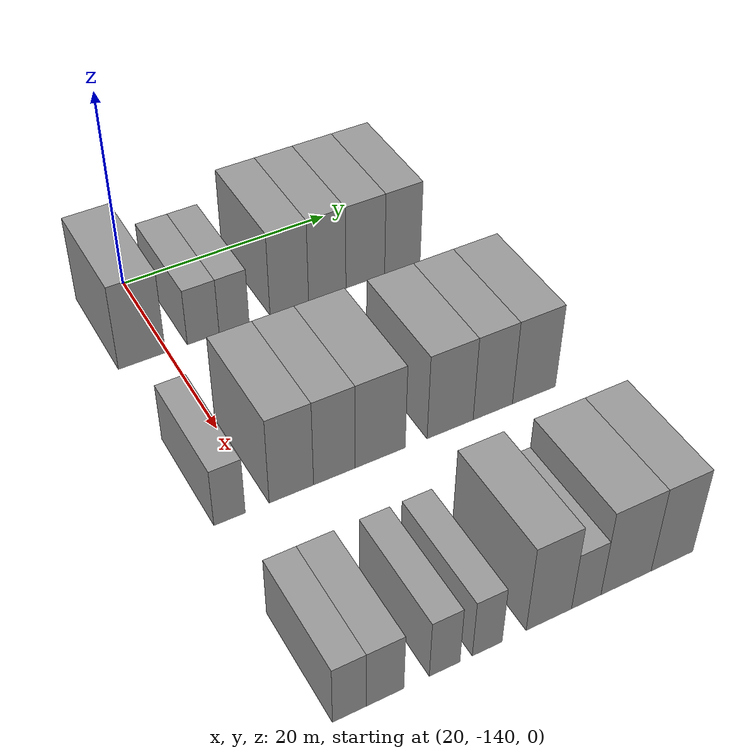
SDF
<sdf version="1.6">
 <world name="default">
  <model name="building_25">
   <static>1</static>
   <pose>25.0000 -142.2803 0 0.000000 0.000000 0.000000</pose>
   <link name="link">
    <pose>0 0 4.50 0 0 0</pose>
    <collision name="collision"><geometry><box><size>10.0000 4.2353 9.0000</size></box></geometry></collision>
    <visual name="visual">
     <cast_shadows>0</cast_shadows>
     <geometry><box><size>10.0000 4.2353 9.0000</size></box></geometry>
     <material>
      <script>
       <uri>model://grey_wall/materials/scripts</uri>
       <uri>model://grey_wall/materials/textures</uri>
       <name>vrc/grey_wall</name>
      </script>
     </material>
    </visual>
   </link>
  </model>
  <model name="building_26">
   <static>1</static>
   <pose>25.0000 -136.6865 0 0.000000 0.000000 0.000000</pose>
   <link name="link">
    <pose>0 0 3.00 0 0 0</pose>
    <collision name="collision"><geometry><box><size>10.0000 2.9522 6.0000</size></box></geometry></collision>
    <visual name="visual">
     <cast_shadows>0</cast_shadows>
     <geometry><box><size>10.0000 2.9522 6.0000</size></box></geometry>
     <material>
      <script>
       <uri>model://grey_wall/materials/scripts</uri>
       <uri>model://grey_wall/materials/textures</uri>
       <name>vrc/grey_wall</name>
      </script>
     </material>
    </visual>
   </link>
  </model>
  <model name="building_27">
   <static>1</static>
   <pose>25.0000 -133.7986 0 0.000000 0.000000 0.000000</pose>
   <link name="link">
    <pose>0 0 3.00 0 0 0</pose>
    <collision name="collision"><geometry><box><size>10.0000 2.8236 6.0000</size></box></geometry></collision>
    <visual name="visual">
     <cast_shadows>0</cast_shadows>
     <geometry><box><size>10.0000 2.8236 6.0000</size></box></geometry>
     <material>
      <script>
       <uri>model://grey_wall/materials/scripts</uri>
       <uri>model://grey_wall/materials/textures</uri>
       <name>vrc/grey_wall</name>
      </script>
     </material>
    </visual>
   </link>
  </model>
  <model name="building_28">
   <static>1</static>
   <pose>25.0000 -128.5092 0 0.000000 0.000000 0.000000</pose>
   <link name="link">
    <pose>0 0 4.50 0 0 0</pose>
    <collision name="collision"><geometry><box><size>10.0000 3.7552 9.0000</size></box></geometry></collision>
    <visual name="visual">
     <cast_shadows>0</cast_shadows>
     <geometry><box><size>10.0000 3.7552 9.0000</size></box></geometry>
     <material>
      <script>
       <uri>model://grey_wall/materials/scripts</uri>
       <uri>model://grey_wall/materials/textures</uri>
       <name>vrc/grey_wall</name>
      </script>
     </material>
    </visual>
   </link>
  </model>
  <model name="building_29">
   <static>1</static>
   <pose>25.0000 -124.7815 0 0.000000 0.000000 0.000000</pose>
   <link name="link">
    <pose>0 0 4.50 0 0 0</pose>
    <collision name="collision"><geometry><box><size>10.0000 3.7002 9.0000</size></box></geometry></collision>
    <visual name="visual">
     <cast_shadows>0</cast_shadows>
     <geometry><box><size>10.0000 3.7002 9.0000</size></box></geometry>
     <material>
      <script>
       <uri>model://grey_wall/materials/scripts</uri>
       <uri>model://grey_wall/materials/textures</uri>
       <name>vrc/grey_wall</name>
      </script>
     </material>
    </visual>
   </link>
  </model>
  <model name="building_30">
   <static>1</static>
   <pose>25.0000 -120.9735 0 0.000000 0.000000 0.000000</pose>
   <link name="link">
    <pose>0 0 4.50 0 0 0</pose>
    <collision name="collision"><geometry><box><size>10.0000 3.9158 9.0000</size></box></geometry></collision>
    <visual name="visual">
     <cast_shadows>0</cast_shadows>
     <geometry><box><size>10.0000 3.9158 9.0000</size></box></geometry>
     <material>
      <script>
       <uri>model://grey_wall/materials/scripts</uri>
       <uri>model://grey_wall/materials/textures</uri>
       <name>vrc/grey_wall</name>
      </script>
     </material>
    </visual>
   </link>
  </model>
  <model name="building_31">
   <static>1</static>
   <pose>25.0000 -117.1843 0 0.000000 0.000000 0.000000</pose>
   <link name="link">
    <pose>0 0 4.50 0 0 0</pose>
    <collision name="collision"><geometry><box><size>10.0000 3.6627 9.0000</size></box></geometry></collision>
    <visual name="visual">
     <cast_shadows>0</cast_shadows>
     <geometry><box><size>10.0000 3.6627 9.0000</size></box></geometry>
     <material>
      <script>
       <uri>model://grey_wall/materials/scripts</uri>
       <uri>model://grey_wall/materials/textures</uri>
       <name>vrc/grey_wall</name>
      </script>
     </material>
    </visual>
   </link>
  </model>
  <model name="building_135">
   <static>1</static>
   <pose>44.0000 -142.9965 0 0.000000 0.000000 0.000000</pose>
   <link name="link">
    <pose>0 0 3.00 0 0 0</pose>
    <collision name="collision"><geometry><box><size>10.0000 2.5897 6.0000</size></box></geometry></collision>
    <visual name="visual">
     <cast_shadows>0</cast_shadows>
     <geometry><box><size>10.0000 2.5897 6.0000</size></box></geometry>
     <material>
      <script>
       <uri>model://grey_wall/materials/scripts</uri>
       <uri>model://grey_wall/materials/textures</uri>
       <name>vrc/grey_wall</name>
      </script>
     </material>
    </visual>
   </link>
  </model>
  <model name="building_136">
   <static>1</static>
   <pose>44.0000 -137.8077 0 0.000000 0.000000 0.000000</pose>
   <link name="link">
    <pose>0 0 4.50 0 0 0</pose>
    <collision name="collision"><geometry><box><size>10.0000 3.7879 9.0000</size></box></geometry></collision>
    <visual name="visual">
     <cast_shadows>0</cast_shadows>
     <geometry><box><size>10.0000 3.7879 9.0000</size></box></geometry>
     <material>
      <script>
       <uri>model://grey_wall/materials/scripts</uri>
       <uri>model://grey_wall/materials/textures</uri>
       <name>vrc/grey_wall</name>
      </script>
     </material>
    </visual>
   </link>
  </model>
  <model name="building_137">
   <static>1</static>
   <pose>44.0000 -134.0973 0 0.000000 0.000000 0.000000</pose>
   <link name="link">
    <pose>0 0 4.50 0 0 0</pose>
    <collision name="collision"><geometry><box><size>10.0000 3.6330 9.0000</size></box></geometry></collision>
    <visual name="visual">
     <cast_shadows>0</cast_shadows>
     <geometry><box><size>10.0000 3.6330 9.0000</size></box></geometry>
     <material>
      <script>
       <uri>model://grey_wall/materials/scripts</uri>
       <uri>model://grey_wall/materials/textures</uri>
       <name>vrc/grey_wall</name>
      </script>
     </material>
    </visual>
   </link>
  </model>
  <model name="building_138">
   <static>1</static>
   <pose>44.0000 -130.0490 0 0.000000 0.000000 0.000000</pose>
   <link name="link">
    <pose>0 0 4.50 0 0 0</pose>
    <collision name="collision"><geometry><box><size>10.0000 4.4636 9.0000</size></box></geometry></collision>
    <visual name="visual">
     <cast_shadows>0</cast_shadows>
     <geometry><box><size>10.0000 4.4636 9.0000</size></box></geometry>
     <material>
      <script>
       <uri>model://grey_wall/materials/scripts</uri>
       <uri>model://grey_wall/materials/textures</uri>
       <name>vrc/grey_wall</name>
      </script>
     </material>
    </visual>
   </link>
  </model>
  <model name="building_139">
   <static>1</static>
   <pose>44.0000 -123.6754 0 0.000000 0.000000 0.000000</pose>
   <link name="link">
    <pose>0 0 4.50 0 0 0</pose>
    <collision name="collision"><geometry><box><size>10.0000 4.2837 9.0000</size></box></geometry></collision>
    <visual name="visual">
     <cast_shadows>0</cast_shadows>
     <geometry><box><size>10.0000 4.2837 9.0000</size></box></geometry>
     <material>
      <script>
       <uri>model://grey_wall/materials/scripts</uri>
       <uri>model://grey_wall/materials/textures</uri>
       <name>vrc/grey_wall</name>
      </script>
     </material>
    </visual>
   </link>
  </model>
  <model name="building_140">
   <static>1</static>
   <pose>44.0000 -119.6615 0 0.000000 0.000000 0.000000</pose>
   <link name="link">
    <pose>0 0 4.50 0 0 0</pose>
    <collision name="collision"><geometry><box><size>10.0000 3.7443 9.0000</size></box></geometry></collision>
    <visual name="visual">
     <cast_shadows>0</cast_shadows>
     <geometry><box><size>10.0000 3.7443 9.0000</size></box></geometry>
     <material>
      <script>
       <uri>model://grey_wall/materials/scripts</uri>
       <uri>model://grey_wall/materials/textures</uri>
       <name>vrc/grey_wall</name>
      </script>
     </material>
    </visual>
   </link>
  </model>
  <model name="building_141">
   <static>1</static>
   <pose>44.0000 -115.6924 0 0.000000 0.000000 0.000000</pose>
   <link name="link">
    <pose>0 0 4.50 0 0 0</pose>
    <collision name="collision"><geometry><box><size>10.0000 4.1938 9.0000</size></box></geometry></collision>
    <visual name="visual">
     <cast_shadows>0</cast_shadows>
     <geometry><box><size>10.0000 4.1938 9.0000</size></box></geometry>
     <material>
      <script>
       <uri>model://grey_wall/materials/scripts</uri>
       <uri>model://grey_wall/materials/textures</uri>
       <name>vrc/grey_wall</name>
      </script>
     </material>
    </visual>
   </link>
  </model>
  <model name="building_256">
   <static>1</static>
   <pose>63.0000 -143.0145 0 0.000000 0.000000 0.000000</pose>
   <link name="link">
    <pose>0 0 3.00 0 0 0</pose>
    <collision name="collision"><geometry><box><size>10.0000 2.5443 6.0000</size></box></geometry></collision>
    <visual name="visual">
     <cast_shadows>0</cast_shadows>
     <geometry><box><size>10.0000 2.5443 6.0000</size></box></geometry>
     <material>
      <script>
       <uri>model://grey_wall/materials/scripts</uri>
       <uri>model://grey_wall/materials/textures</uri>
       <name>vrc/grey_wall</name>
      </script>
     </material>
    </visual>
   </link>
  </model>
  <model name="building_257">
   <static>1</static>
   <pose>63.0000 -140.2894 0 0.000000 0.000000 0.000000</pose>
   <link name="link">
    <pose>0 0 3.00 0 0 0</pose>
    <collision name="collision"><geometry><box><size>10.0000 2.9058 6.0000</size></box></geometry></collision>
    <visual name="visual">
     <cast_shadows>0</cast_shadows>
     <geometry><box><size>10.0000 2.9058 6.0000</size></box></geometry>
     <material>
      <script>
       <uri>model://grey_wall/materials/scripts</uri>
       <uri>model://grey_wall/materials/textures</uri>
       <name>vrc/grey_wall</name>
      </script>
     </material>
    </visual>
   </link>
  </model>
  <model name="building_258">
   <static>1</static>
   <pose>63.0000 -135.6178 0 0.000000 0.000000 0.000000</pose>
   <link name="link">
    <pose>0 0 3.00 0 0 0</pose>
    <collision name="collision"><geometry><box><size>10.0000 2.4374 6.0000</size></box></geometry></collision>
    <visual name="visual">
     <cast_shadows>0</cast_shadows>
     <geometry><box><size>10.0000 2.4374 6.0000</size></box></geometry>
     <material>
      <script>
       <uri>model://grey_wall/materials/scripts</uri>
       <uri>model://grey_wall/materials/textures</uri>
       <name>vrc/grey_wall</name>
      </script>
     </material>
    </visual>
   </link>
  </model>
  <model name="building_259">
   <static>1</static>
   <pose>63.0000 -132.1848 0 0.000000 0.000000 0.000000</pose>
   <link name="link">
    <pose>0 0 3.00 0 0 0</pose>
    <collision name="collision"><geometry><box><size>10.0000 2.4287 6.0000</size></box></geometry></collision>
    <visual name="visual">
     <cast_shadows>0</cast_shadows>
     <geometry><box><size>10.0000 2.4287 6.0000</size></box></geometry>
     <material>
      <script>
       <uri>model://grey_wall/materials/scripts</uri>
       <uri>model://grey_wall/materials/textures</uri>
       <name>vrc/grey_wall</name>
      </script>
     </material>
    </visual>
   </link>
  </model>
  <model name="building_260">
   <static>1</static>
   <pose>63.0000 -127.0533 0 0.000000 0.000000 0.000000</pose>
   <link name="link">
    <pose>0 0 4.50 0 0 0</pose>
    <collision name="collision"><geometry><box><size>10.0000 3.8343 9.0000</size></box></geometry></collision>
    <visual name="visual">
     <cast_shadows>0</cast_shadows>
     <geometry><box><size>10.0000 3.8343 9.0000</size></box></geometry>
     <material>
      <script>
       <uri>model://grey_wall/materials/scripts</uri>
       <uri>model://grey_wall/materials/textures</uri>
       <name>vrc/grey_wall</name>
      </script>
     </material>
    </visual>
   </link>
  </model>
  <model name="building_261">
   <static>1</static>
   <pose>63.0000 -123.8676 0 0.000000 0.000000 0.000000</pose>
   <link name="link">
    <pose>0 0 3.00 0 0 0</pose>
    <collision name="collision"><geometry><box><size>10.0000 2.5370 6.0000</size></box></geometry></collision>
    <visual name="visual">
     <cast_shadows>0</cast_shadows>
     <geometry><box><size>10.0000 2.5370 6.0000</size></box></geometry>
     <material>
      <script>
       <uri>model://grey_wall/materials/scripts</uri>
       <uri>model://grey_wall/materials/textures</uri>
       <name>vrc/grey_wall</name>
      </script>
     </material>
    </visual>
   </link>
  </model>
  <model name="building_262">
   <static>1</static>
   <pose>63.0000 -120.3769 0 0.000000 0.000000 0.000000</pose>
   <link name="link">
    <pose>0 0 4.50 0 0 0</pose>
    <collision name="collision"><geometry><box><size>10.0000 4.4443 9.0000</size></box></geometry></collision>
    <visual name="visual">
     <cast_shadows>0</cast_shadows>
     <geometry><box><size>10.0000 4.4443 9.0000</size></box></geometry>
     <material>
      <script>
       <uri>model://grey_wall/materials/scripts</uri>
       <uri>model://grey_wall/materials/textures</uri>
       <name>vrc/grey_wall</name>
      </script>
     </material>
    </visual>
   </link>
  </model>
  <model name="building_263">
   <static>1</static>
   <pose>63.0000 -116.2612 0 0.000000 0.000000 0.000000</pose>
   <link name="link">
    <pose>0 0 4.50 0 0 0</pose>
    <collision name="collision"><geometry><box><size>10.0000 3.7872 9.0000</size></box></geometry></collision>
    <visual name="visual">
     <cast_shadows>0</cast_shadows>
     <geometry><box><size>10.0000 3.7872 9.0000</size></box></geometry>
     <material>
      <script>
       <uri>model://grey_wall/materials/scripts</uri>
       <uri>model://grey_wall/materials/textures</uri>
       <name>vrc/grey_wall</name>
      </script>
     </material>
    </visual>
   </link>
  </model>
 </world>
</sdf>
